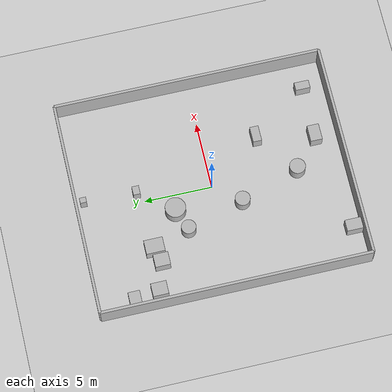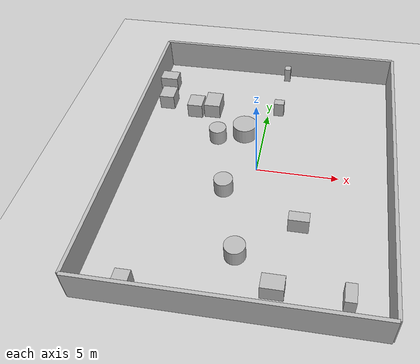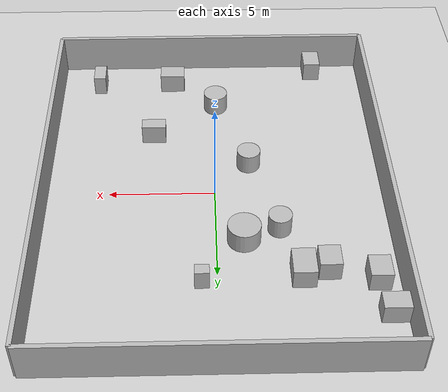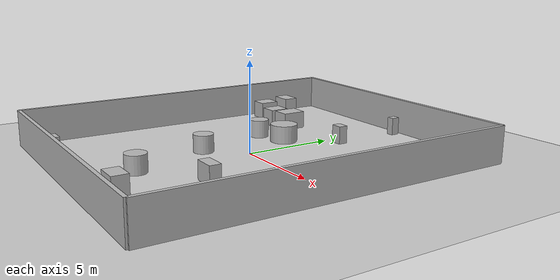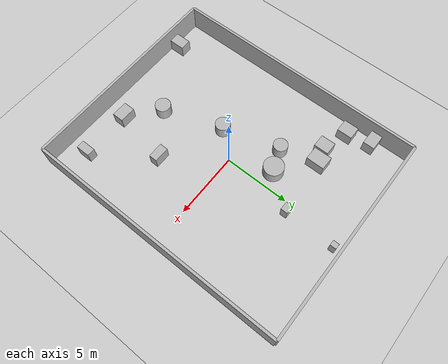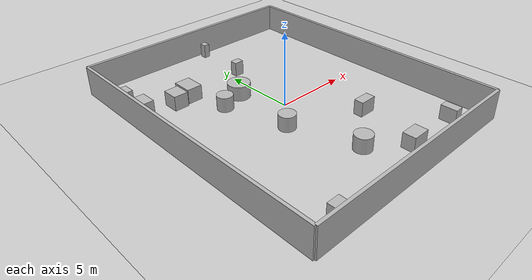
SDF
<?xml version="1.0"?>
<sdf version="1.6">
  <world name="env_80">

    <include><uri>model://ground_plane</uri></include>
    <include><uri>model://sun</uri></include>

    <!-- WALLS -->
    <model name="wall_north"><static>true</static><pose>0 9.953588443401216 1 0 0 0</pose>
      <link name="link"><collision name="collision">
        <geometry><box><size>16.02347247439249 0.2 2</size></box></geometry>
      </collision><visual name="visual">
        <geometry><box><size>16.02347247439249 0.2 2</size></box></geometry>
      </visual></link>
    </model>

    <model name="wall_south"><static>true</static><pose>0 -9.953588443401216 1 0 0 0</pose>
      <link name="link"><collision name="collision">
        <geometry><box><size>16.02347247439249 0.2 2</size></box></geometry>
      </collision><visual name="visual">
        <geometry><box><size>16.02347247439249 0.2 2</size></box></geometry>
      </visual></link>
    </model>

    <model name="wall_east"><static>true</static><pose>8.011736237196246 0 1 0 0 1.57</pose>
      <link name="link"><collision name="collision">
        <geometry><box><size>19.907176886802432 0.2 2</size></box></geometry>
      </collision><visual name="visual">
        <geometry><box><size>19.907176886802432 0.2 2</size></box></geometry>
      </visual></link>
    </model>

    <model name="wall_west"><static>true</static><pose>-8.011736237196246 0 1 0 0 1.57</pose>
      <link name="link"><collision name="collision">
        <geometry><box><size>19.907176886802432 0.2 2</size></box></geometry>
      </collision><visual name="visual">
        <geometry><box><size>19.907176886802432 0.2 2</size></box></geometry>
      </visual></link>
    </model>

    <!-- SENSOR -->

    <model name="lidar_sensor">
      <static>true</static>
      <pose>4.5400904468678664 -5.416867831712534 0.4 0 0 0</pose>
      <link name="link">
        <sensor name="lidar" type="ray">
          <pose>0 0 0 0 0 0</pose>
          <visualize>true</visualize>
          <always_on>true</always_on>
          <update_rate>10</update_rate>
          <ray>
            <scan><horizontal>
              <samples>240</samples>
              <resolution>1</resolution>
              <min_angle>-3.14159</min_angle>
              <max_angle>3.14159</max_angle>
            </horizontal></scan>
            <range><min>0.15</min><max>20.0</max><resolution>0.01</resolution></range>
          </ray>
          <plugin name="lidar_plugin" filename="liblidar_plugin.so"/>
        </sensor>
      </link>
    </model>

    <!-- OBSTACLES -->

    <model name="obstacle_0">
      <static>true</static>
      <pose>0.6808115692134482 5.488498196282608 0.5 0 0 0</pose>
      <link name="link">
        <collision name="collision">
          <geometry><box><size>0.65 0.51 1.0</size></box></geometry>
        </collision>
        <visual name="visual">
          <geometry><box><size>0.65 0.51 1.0</size></box></geometry>
        </visual>
      </link>
    </model>

    <model name="obstacle_1">
      <static>true</static>
      <pose>-3.7189421992733873 5.104106423437232 0.5 0 0 0</pose>
      <link name="link">
        <collision name="collision">
          <geometry><box><size>1.05 1.38 1.0</size></box></geometry>
        </collision>
        <visual name="visual">
          <geometry><box><size>1.05 1.38 1.0</size></box></geometry>
        </visual>
      </link>
    </model>

    <model name="obstacle_2">
      <static>true</static>
      <pose>0.8192857495213257 9.388018768294561 0.5 0 0 0</pose>
      <link name="link">
        <collision name="collision">
          <geometry><box><size>0.41 0.47 1.0</size></box></geometry>
        </collision>
        <visual name="visual">
          <geometry><box><size>0.41 0.47 1.0</size></box></geometry>
        </visual>
      </link>
    </model>

    <model name="obstacle_3">
      <static>true</static>
      <pose>-1.6694951692471172 -1.901909283284378 0.5 0 0 0</pose>
      <link name="link">
        <collision name="collision">
          <geometry><cylinder><radius>0.56</radius><length>1.0</length></cylinder></geometry>
        </collision>
        <visual name="visual">
          <geometry><cylinder><radius>0.56</radius><length>1.0</length></cylinder></geometry>
        </visual>
      </link>
    </model>

    <model name="obstacle_4">
      <static>true</static>
      <pose>-7.357790262151251 7.287153662567317 0.5 0 0 0</pose>
      <link name="link">
        <collision name="collision">
          <geometry><box><size>1.27 0.86 1.0</size></box></geometry>
        </collision>
        <visual name="visual">
          <geometry><box><size>1.27 0.86 1.0</size></box></geometry>
        </visual>
      </link>
    </model>

    <model name="obstacle_5">
      <static>true</static>
      <pose>-6.9357189272407505 5.4381710136191135 0.5 0 0 0</pose>
      <link name="link">
        <collision name="collision">
          <geometry><box><size>0.98 1.14 1.0</size></box></geometry>
        </collision>
        <visual name="visual">
          <geometry><box><size>0.98 1.14 1.0</size></box></geometry>
        </visual>
      </link>
    </model>

    <model name="obstacle_6">
      <static>true</static>
      <pose>2.9663262604234895 -3.985098675952874 0.5 0 0 0</pose>
      <link name="link">
        <collision name="collision">
          <geometry><box><size>1.17 0.64 1.0</size></box></geometry>
        </collision>
        <visual name="visual">
          <geometry><box><size>1.17 0.64 1.0</size></box></geometry>
        </visual>
      </link>
    </model>

    <model name="obstacle_7">
      <static>true</static>
      <pose>-0.16259666025304842 -6.367361490531799 0.5 0 0 0</pose>
      <link name="link">
        <collision name="collision">
          <geometry><cylinder><radius>0.59</radius><length>1.0</length></cylinder></geometry>
        </collision>
        <visual name="visual">
          <geometry><cylinder><radius>0.59</radius><length>1.0</length></cylinder></geometry>
        </visual>
      </link>
    </model>

    <model name="obstacle_8">
      <static>true</static>
      <pose>-5.4056037848941045 -9.254950450896244 0.5 0 0 0</pose>
      <link name="link">
        <collision name="collision">
          <geometry><box><size>0.85 1.2 1.0</size></box></geometry>
        </collision>
        <visual name="visual">
          <geometry><box><size>0.85 1.2 1.0</size></box></geometry>
        </visual>
      </link>
    </model>

    <model name="obstacle_9">
      <static>true</static>
      <pose>2.0853482450030683 -8.217262974374224 0.5 0 0 0</pose>
      <link name="link">
        <collision name="collision">
          <geometry><box><size>1.23 0.87 1.0</size></box></geometry>
        </collision>
        <visual name="visual">
          <geometry><box><size>1.23 0.87 1.0</size></box></geometry>
        </visual>
      </link>
    </model>

    <model name="obstacle_10">
      <static>true</static>
      <pose>5.925500125510704 -8.231720103086378 0.5 0 0 0</pose>
      <link name="link">
        <collision name="collision">
          <geometry><box><size>0.61 1.09 1.0</size></box></geometry>
        </collision>
        <visual name="visual">
          <geometry><box><size>0.61 1.09 1.0</size></box></geometry>
        </visual>
      </link>
    </model>

    <model name="obstacle_11">
      <static>true</static>
      <pose>-1.2421105965008703 3.001548243794325 0.5 0 0 0</pose>
      <link name="link">
        <collision name="collision">
          <geometry><cylinder><radius>0.76</radius><length>1.0</length></cylinder></geometry>
        </collision>
        <visual name="visual">
          <geometry><cylinder><radius>0.76</radius><length>1.0</length></cylinder></geometry>
        </visual>
      </link>
    </model>

    <model name="obstacle_12">
      <static>true</static>
      <pose>-4.853613748278768 4.821247441029557 0.5 0 0 0</pose>
      <link name="link">
        <collision name="collision">
          <geometry><box><size>0.98 1.11 1.0</size></box></geometry>
        </collision>
        <visual name="visual">
          <geometry><box><size>0.98 1.11 1.0</size></box></geometry>
        </visual>
      </link>
    </model>

    <model name="obstacle_13">
      <static>true</static>
      <pose>-2.890227092971421 2.390894788944065 0.5 0 0 0</pose>
      <link name="link">
        <collision name="collision">
          <geometry><cylinder><radius>0.54</radius><length>1.0</length></cylinder></geometry>
        </collision>
        <visual name="visual">
          <geometry><cylinder><radius>0.54</radius><length>1.0</length></cylinder></geometry>
        </visual>
      </link>
    </model>

  </world>
</sdf>
